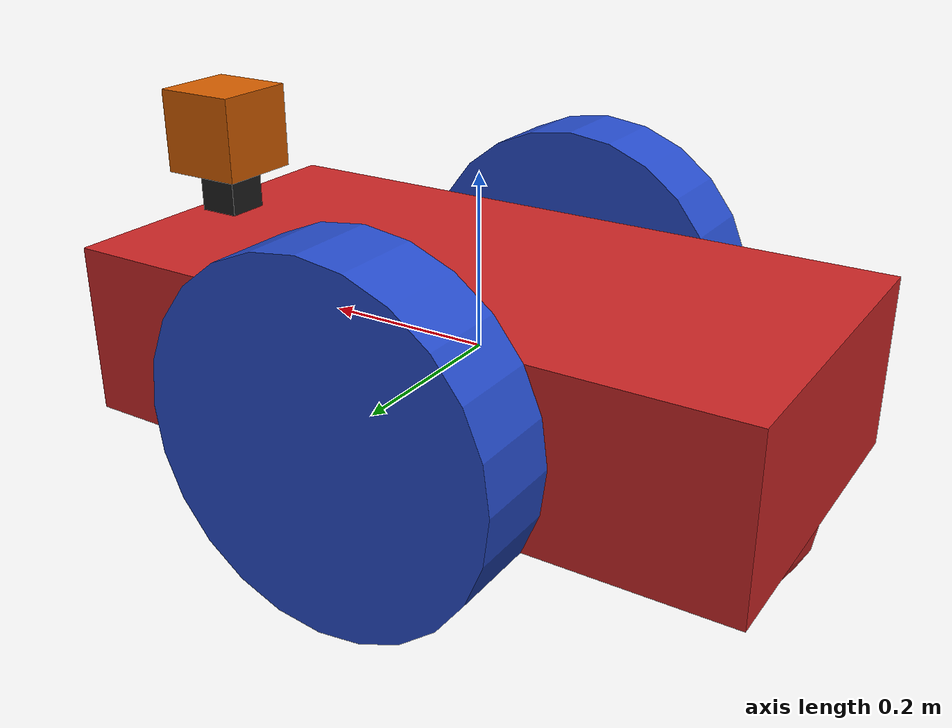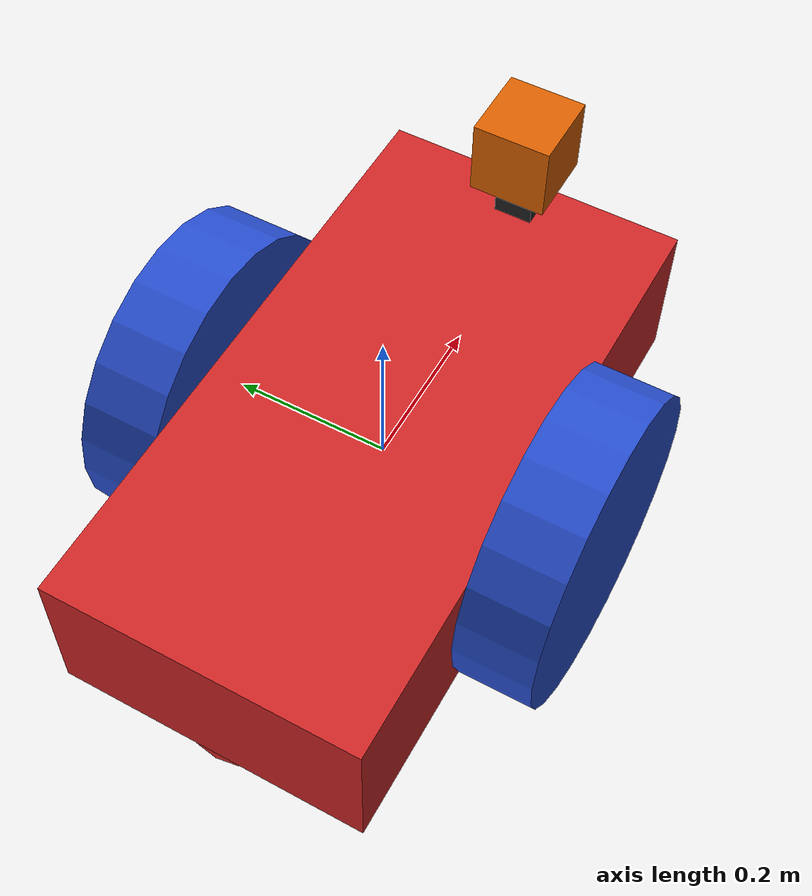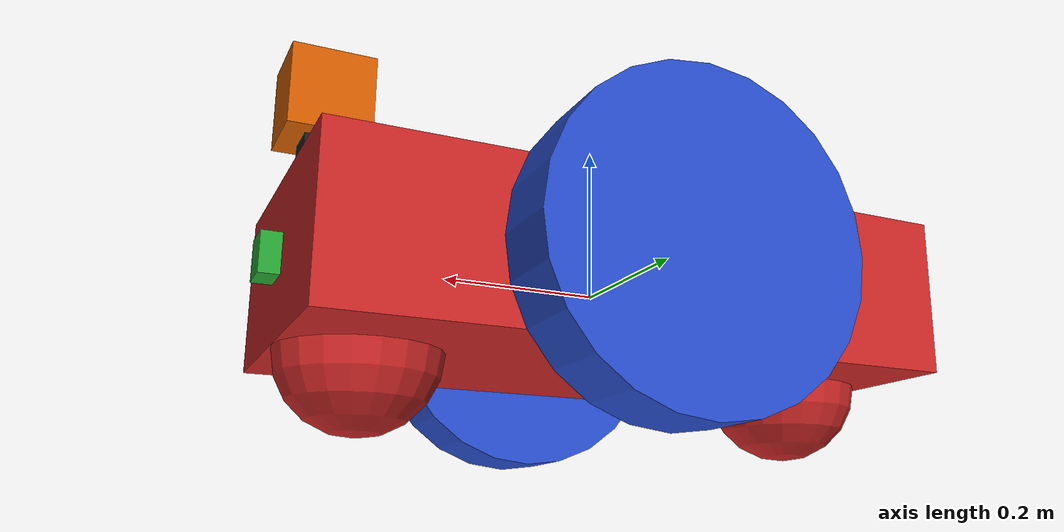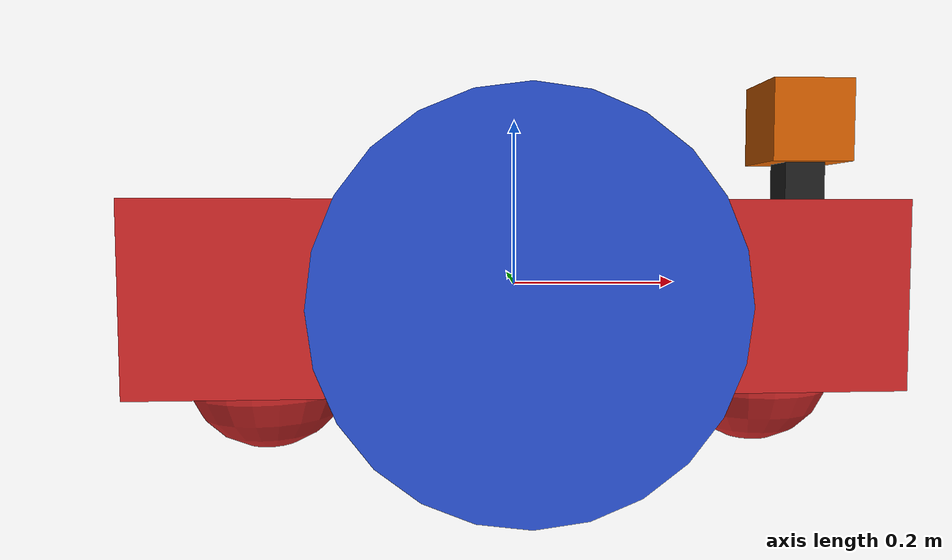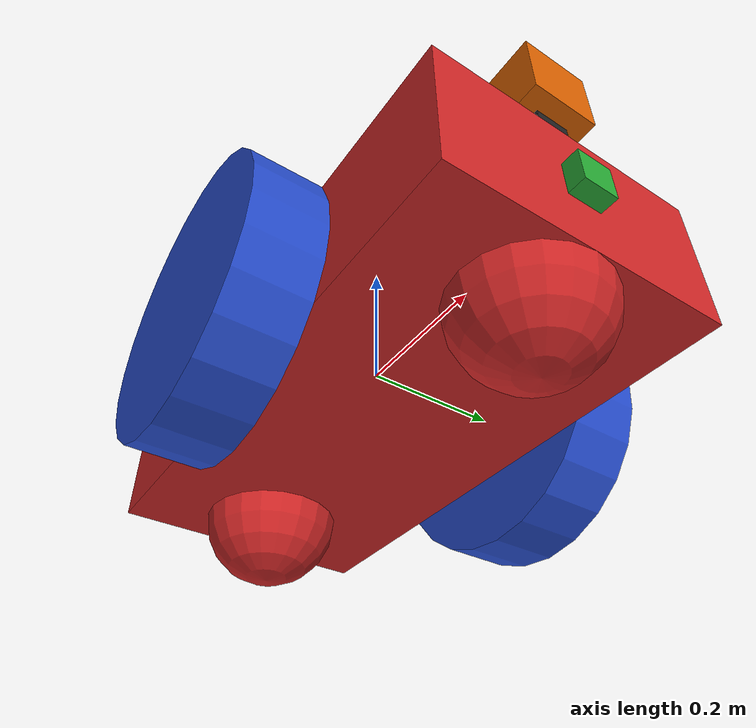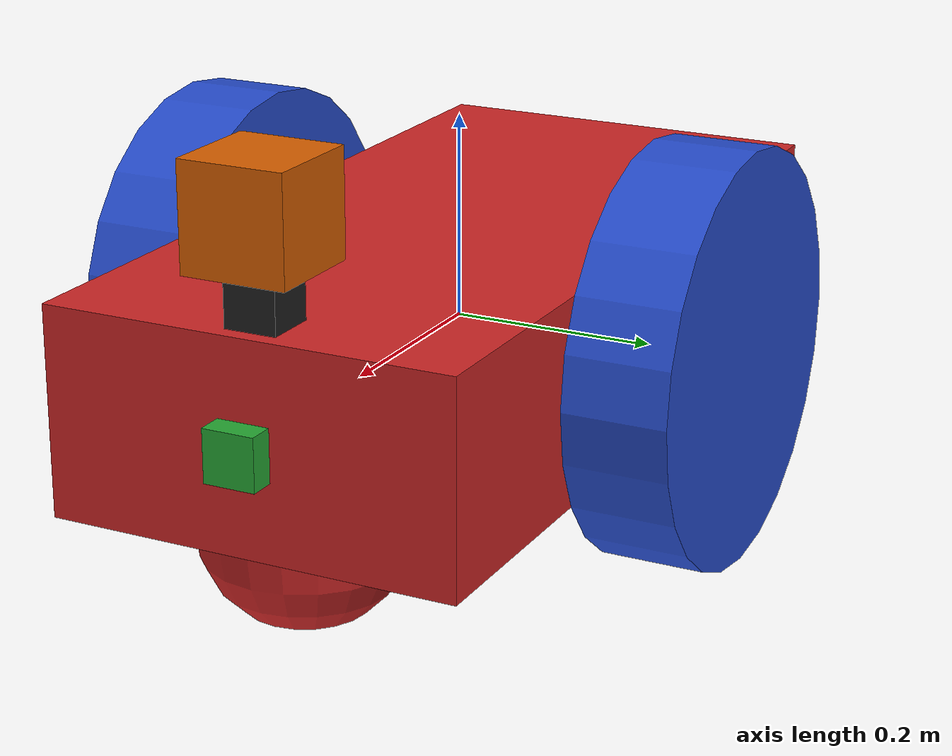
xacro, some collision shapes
<?xml version='1.0'?>

<robot name="my_robot" xmlns:xacro="http://www.ros.org/wiki/xacro">
  <xacro:include filename="$(find my_robot)/urdf/my_robot.gazebo" />

  <gazebo reference="chassis">
    <material>Gazebo/Red</material>
  </gazebo>

  <gazebo reference="left_wheel">
    <material>Gazebo/Blue</material>
  </gazebo>

  <gazebo reference="right_wheel">
    <material>Gazebo/Blue</material>
  </gazebo>

  <gazebo reference="camera">
    <material>Gazebo/Green</material>
  </gazebo>

  <gazebo reference="hokuyo_stand">
    <material>Gazebo/Black</material>
  </gazebo>

  <link name="robot_footprint"></link>

  <joint name="robot_footprint_joint" type="fixed">
    <origin xyz="0 0 0" rpy="0 0 0" />
    <parent link="robot_footprint"/>
    <child link="chassis" />
  </joint>

  <joint type="continuous" name="left_wheel_hinge">
    <origin xyz="0 0.25 0" rpy="0 0 0"/>
    <child link="left_wheel"/>
    <parent link="chassis"/>
    <axis xyz="0 1 0" rpy="0 0 0"/>
    <limit effort="10000" velocity="1000"/>
    <dynamics damping="1.0" friction="1.0"/>
  </joint>

  <joint type="continuous" name="right_wheel_hinge">
    <origin xyz="0 -0.25 0" rpy="0 0 0"/>
    <child link="right_wheel"/>
    <parent link="chassis"/>
    <axis xyz="0 1 0" rpy="0 0 0"/>
    <limit effort="10000" velocity="1000"/>
    <dynamics damping="1.0" friction="1.0"/>
  </joint>

  <joint type="fixed" name="camera_joint">
    <origin xyz="0.4 0 0" rpy="0 0 0" />
    <child link="camera" />
    <parent link="chassis" />
    <axis xyz="0 1 0" />
  </joint>

  <joint type="fixed" name="hokuyo_stand_joint">
    <origin xyz="0.36 0 0.1" rpy="0 0 0" />
    <child link="hokuyo_stand" />
    <parent link="chassis" />
    <axis xyz="0 1 0" />
  </joint>

  <joint type="fixed" name="hokuyo_joint">
    <origin xyz="0 0 0.1" rpy="0 0 0" />
    <child link="hokuyo" />
    <parent link="hokuyo_stand" />
    <axis xyz="0 1 0" />
  </joint>

  <joint type="fixed" name="camera_optical_joint">
    <origin xyz="0 0 0" rpy="-1.5707 0 -1.5707"/>
    <parent link="camera"/>
    <child link="camera_link_optical"/>
  </joint>

  <link name='chassis'>
    <pose>0 0 0.2 0 0 0</pose>

    <inertial>
      <mass value="15.0"/>
      <origin xyz="0.0 0 0" rpy=" 0 0 0"/>
      <inertia
          ixx="0.1" ixy="0" ixz="0"
          iyy="0.1" iyz="0"
          izz="0.1"
      />
    </inertial>

    <collision name='collision'>
      <origin xyz="0 0 0" rpy=" 0 0 0"/>
      <geometry>
        <box size=".8 .4 .2"/>
      </geometry>
    </collision>

    <visual name='chassis_visual'>
      <origin xyz="0 0 0" rpy=" 0 0 0"/>
      <geometry>
        <box size=".8 .4 .2"/>
      </geometry>
    </visual>

    <collision name='back_caster_collision'>
      <origin xyz="-0.3 0 -0.1" rpy=" 0 0 0"/>
      <geometry>
        <sphere radius="0.099"/>
      </geometry>
    </collision>

    <visual name='back_caster_visual'>
      <origin xyz="-0.3 0 -0.1" rpy=" 0 0 0"/>
      <geometry>
        <sphere radius="0.1"/>
      </geometry>
    </visual>

    <collision name='front_caster_collision'>
      <origin xyz="0.3 0 -0.1" rpy=" 0 0 0"/>
      <geometry>
        <sphere radius="0.099"/>
      </geometry>
    </collision>

    <visual name='front_caster_visual'>
      <origin xyz="0.3 0 -0.1" rpy=" 0 0 0"/>
      <geometry>
        <sphere radius="0.1"/>
      </geometry>
    </visual>

  </link>

  <link name="left_wheel">
    <inertial>
      <mass value="5"/>
      <origin xyz="0 0 0" rpy="0 1.5707 1.5707"/>
      <inertia
          ixx="0.1" ixy="0" ixz="0"
          iyy="0.1" iyz="0"
          izz="0.1"
      />
    </inertial>

    <collision>
      <origin xyz="0 0 0" rpy="0 1.5707 1.5707" />
      <geometry>
        <cylinder radius="0.2" length="0.1" />
      </geometry>
    </collision>

    <visual>
      <origin xyz="0 0 0" rpy="0 1.5707 1.5707" />
      <geometry>
        <cylinder radius="0.2" length="0.1" />
      </geometry>
    </visual>

  </link>

  <link name="right_wheel">
    <inertial>
      <mass value="5"/>
      <origin xyz="0 0 0" rpy="0 1.5707 1.5707"/>
      <inertia
          ixx="0.1" ixy="0" ixz="0"
          iyy="0.1" iyz="0"
          izz="0.1"
      />
    </inertial>

    <collision>
      <origin xyz="0 0 0" rpy="0 1.5707 1.5707" />
      <geometry>
        <cylinder radius="0.2" length="0.1" />
      </geometry>
    </collision>

    <visual>
      <origin xyz="0 0 0" rpy="0 1.5707 1.5707" />
      <geometry>
        <cylinder radius="0.2" length="0.1" />
      </geometry>
    </visual>
  </link>

  <link name="camera">
    <inertial>
      <mass value="0.1" />
      <origin xyz="0 0 0" rpy="0 0 0" />
      <box_inertia m="0.1" x="0.05" y="0.05" z="0.05"/>
      <inertia
          ixx="1e-6" ixy="0" ixz="0"
          iyy="1e-6" iyz="0"
          izz="1e-6" />
    </inertial>

    <collision>
      <origin xyz="0 0 0" rpy="0 0 0" />
      <geometry>
        <box size="0.05 0.05 0.05" />
      </geometry>
    </collision>

    <visual>
      <origin xyz="0 0 0" rpy="0 0 0" />
      <geometry>
        <box size="0.05 0.05 0.05" />
      </geometry>
    </visual>
  </link>

  <link name="hokuyo">
    <inertial>
      <mass value="1e-5" />
      <origin xyz="0 0 0" rpy="0 0 0" />
      <inertia
          ixx="1e-6" ixy="0" ixz="0"
          iyy="1e-6" iyz="0"
          izz="1e-6" />
    </inertial>

    <collision>
      <origin xyz="0 0 0" rpy="0 0 0" />
      <geometry>
        <box size="0.1 0.1 0.1" />
      </geometry>
    </collision>

    <visual>
      <origin xyz="0 0 0" rpy="0 0 0" />
      <geometry>
        <mesh filename="package://my_robot/meshes/hokuyo.dae" />
      </geometry>
    </visual>
  </link>

  <link name="hokuyo_stand">
    <inertial>
      <mass value="0.1" />
      <origin xyz="0 0 0" rpy="0 0 0" />
      <box_inertia m="0.1" x="0.05" y="0.05" z="0.05"/>
      <inertia
          ixx="1e-6" ixy="0" ixz="0"
          iyy="1e-6" iyz="0"
          izz="1e-6" />
    </inertial>

    <collision>
      <origin xyz="0 0 0" rpy="0 0 0" />
      <geometry>
        <box size="0.05 0.05 0.2" />
      </geometry>
    </collision>

    <visual>
      <origin xyz="0 0 0" rpy="0 0 0" />
      <geometry>
        <box size="0.05 0.05 0.15" />
      </geometry>
    </visual>
  </link>

  <link name="camera_link_optical">
  </link>

</robot>
